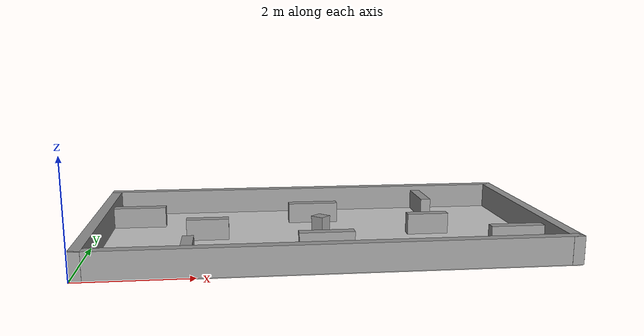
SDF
<sdf version="1.6">
 <world name="default">
  <light name="sun" type="directional">
   <pose>0 0 10 0 -0 0</pose>
   <diffuse>0.8 0.8 0.8 1</diffuse>
   <specular>0.1 0.1 0.1 1</specular>
   <attenuation>
    <range>1000</range>
    <constant>0.9</constant>
    <linear>0.01</linear>
    <quadratic>0.001</quadratic>
   </attenuation>
   <direction>-0.5 0.5 -1</direction>
  </light>
  <gravity>0 0 -9.8</gravity>
  <magnetic_field>6e-06 2.3e-05 -4.2e-05</magnetic_field>
  <atmosphere type="adiabatic"/>
  <physics name="default_physics" default="0" type="ode">
   <max_step_size>0.01</max_step_size>
   <real_time_factor>1</real_time_factor>
   <real_time_update_rate>0</real_time_update_rate>
  </physics>
  <scene><ambient>0.4 0.4 0.4 1</ambient><background>0.7 0.7 0.7 1</background><shadows>1</shadows></scene>
  <spherical_coordinates>
   <surface_model>EARTH_WGS84</surface_model>
   <latitude_deg>0</latitude_deg>
   <longitude_deg>0</longitude_deg>
   <elevation>0</elevation>
   <heading_deg>0</heading_deg>
  </spherical_coordinates>
  <model name="wall">
   <pose frame="world">4.245 2.445 0 0 -0 0</pose>
   <link name="Wall_100">
    <collision name="Wall_100_Collision">
     <geometry><box><size>0.259899 0.25 0.4</size></box></geometry>
     <pose>0 0 0.2 0 -0 0</pose>
    </collision>
    <visual name="Wall_100_Visual">
     <pose>0 0 0.2 0 -0 0</pose>
     <geometry><box><size>0.259899 0.25 0.4</size></box></geometry>
     <material>
      <script><uri>file://media/materials/scripts/gazebo.material</uri><name>Gazebo/Grey</name></script>
      <ambient>1 1 1 1</ambient>
     </material>
    </visual>
    <pose>0.030183 -0.017942 0 0 0 -0.785398</pose>
   </link>
   <link name="Wall_45">
    <collision name="Wall_45_Collision">
     <geometry><box><size>8.485 0.2 0.5</size></box></geometry>
     <pose>0 0 0.25 0 -0 0</pose>
    </collision>
    <visual name="Wall_45_Visual">
     <pose>0 0 0.25 0 -0 0</pose>
     <geometry><box><size>8.485 0.2 0.5</size></box></geometry>
     <material>
      <script><uri>file://media/materials/scripts/gazebo.material</uri><name>Gazebo/Grey</name></script>
      <ambient>1 1 1 1</ambient>
     </material>
    </visual>
    <pose>0 2.34 0 0 -0 1.5e-05</pose>
   </link>
   <link name="Wall_54">
    <collision name="Wall_54_Collision">
     <geometry><box><size>4.885 0.2 0.5</size></box></geometry>
     <pose>0 0 0.25 0 -0 0</pose>
    </collision>
    <visual name="Wall_54_Visual">
     <pose>0 0 0.25 0 -0 0</pose>
     <geometry><box><size>4.885 0.2 0.5</size></box></geometry>
     <material>
      <script><uri>file://media/materials/scripts/gazebo.material</uri><name>Gazebo/Grey</name></script>
      <ambient>1 1 1 1</ambient>
     </material>
    </visual>
    <pose>4.14 0 0 0 0 -1.5708</pose>
   </link>
   <link name="Wall_56">
    <collision name="Wall_56_Collision">
     <geometry><box><size>8.485 0.2 0.5</size></box></geometry>
     <pose>0 0 0.25 0 -0 0</pose>
    </collision>
    <visual name="Wall_56_Visual">
     <pose>0 0 0.25 0 -0 0</pose>
     <geometry><box><size>8.485 0.2 0.5</size></box></geometry>
     <material>
      <script><uri>file://media/materials/scripts/gazebo.material</uri><name>Gazebo/Grey</name></script>
      <ambient>1 1 1 1</ambient>
     </material>
    </visual>
    <pose>0 -2.34 0 0 0 -3.14158</pose>
   </link>
   <link name="Wall_58">
    <collision name="Wall_58_Collision">
     <geometry><box><size>4.885 0.2 0.5</size></box></geometry>
     <pose>0 0 0.25 0 -0 0</pose>
    </collision>
    <visual name="Wall_58_Visual">
     <pose>0 0 0.25 0 -0 0</pose>
     <geometry><box><size>4.885 0.2 0.5</size></box></geometry>
     <material>
      <script><uri>file://media/materials/scripts/gazebo.material</uri><name>Gazebo/Grey</name></script>
      <ambient>1 1 1 1</ambient>
     </material>
    </visual>
    <pose>-4.14 -0 0 0 0 -1.5708</pose>
   </link>
   <link name="Wall_74">
    <collision name="Wall_74_Collision">
     <geometry><box><size>1.05 0.2 0.4</size></box></geometry>
     <pose>0 0 0.2 0 -0 0</pose>
    </collision>
    <visual name="Wall_74_Visual">
     <pose>0 0 0.2 0 -0 0</pose>
     <geometry><box><size>1.05 0.2 0.4</size></box></geometry>
     <material>
      <script><uri>file://media/materials/scripts/gazebo.material</uri><name>Gazebo/Grey</name></script>
      <ambient>1 1 1 1</ambient>
     </material>
    </visual>
    <pose>-3.54 1.14 0 0 -0 0</pose>
   </link>
   <link name="Wall_76">
    <collision name="Wall_76_Collision">
     <geometry><box><size>1 0.2 0.4</size></box></geometry>
     <pose>0 0 0.2 0 -0 0</pose>
    </collision>
    <visual name="Wall_76_Visual">
     <pose>0 0 0.2 0 -0 0</pose>
     <geometry><box><size>1 0.2 0.4</size></box></geometry>
     <material>
      <script><uri>file://media/materials/scripts/gazebo.material</uri><name>Gazebo/Grey</name></script>
      <ambient>1 1 1 1</ambient>
     </material>
    </visual>
    <pose>-2.44 -1.74 0 0 -0 1.5708</pose>
   </link>
   <link name="Wall_78">
    <collision name="Wall_78_Collision">
     <geometry><box><size>1 0.2 0.4</size></box></geometry>
     <pose>0 0 0.2 0 -0 0</pose>
    </collision>
    <visual name="Wall_78_Visual">
     <pose>0 0 0.2 0 -0 0</pose>
     <geometry><box><size>1 0.2 0.4</size></box></geometry>
     <material>
      <script><uri>file://media/materials/scripts/gazebo.material</uri><name>Gazebo/Grey</name></script>
      <ambient>1 1 1 1</ambient>
     </material>
    </visual>
    <pose>3.54 -1.14 0 0 -0 3.14159</pose>
   </link>
   <link name="Wall_80">
    <collision name="Wall_80_Collision">
     <geometry><box><size>1 0.2 0.4</size></box></geometry>
     <pose>0 0 0.2 0 -0 0</pose>
    </collision>
    <visual name="Wall_80_Visual">
     <pose>0 0 0.2 0 -0 0</pose>
     <geometry><box><size>1 0.2 0.4</size></box></geometry>
     <material>
      <script><uri>file://media/materials/scripts/gazebo.material</uri><name>Gazebo/Grey</name></script>
      <ambient>1 1 1 1</ambient>
     </material>
    </visual>
    <pose>2.44 1.74 0 0 -0 1.5708</pose>
   </link>
   <link name="Wall_82">
    <collision name="Wall_82_Collision">
     <geometry><box><size>1 0.2 0.4</size></box></geometry>
     <pose>0 0 0.2 0 -0 0</pose>
    </collision>
    <visual name="Wall_82_Visual">
     <pose>0 0 0.2 0 -0 0</pose>
     <geometry><box><size>1 0.2 0.4</size></box></geometry>
     <material>
      <script><uri>file://media/materials/scripts/gazebo.material</uri><name>Gazebo/Grey</name></script>
      <ambient>1 1 1 1</ambient>
     </material>
    </visual>
    <pose>0 1.205 0 0 -0 0</pose>
   </link>
   <link name="Wall_84">
    <collision name="Wall_84_Collision">
     <geometry><box><size>1 0.2 0.4</size></box></geometry>
     <pose>0 0 0.2 0 -0 0</pose>
    </collision>
    <visual name="Wall_84_Visual">
     <pose>0 0 0.2 0 -0 0</pose>
     <geometry><box><size>1 0.2 0.4</size></box></geometry>
     <material>
      <script><uri>file://media/materials/scripts/gazebo.material</uri><name>Gazebo/Grey</name></script>
      <ambient>1 1 1 1</ambient>
     </material>
    </visual>
    <pose>0 -1.205 0 0 -0 0</pose>
   </link>
   <link name="Wall_86">
    <collision name="Wall_86_Collision">
     <geometry><box><size>0.8 0.2 0.4</size></box></geometry>
     <pose>0 0 0.2 0 -0 0</pose>
    </collision>
    <visual name="Wall_86_Visual">
     <pose>0 0 0.2 0 -0 0</pose>
     <geometry><box><size>0.8 0.2 0.4</size></box></geometry>
     <material>
      <script><uri>file://media/materials/scripts/gazebo.material</uri><name>Gazebo/Grey</name></script>
      <ambient>1 1 1 1</ambient>
     </material>
    </visual>
    <pose>-2.14 -0 0 0 -0 0</pose>
   </link>
   <link name="Wall_88">
    <collision name="Wall_88_Collision">
     <geometry><box><size>0.8 0.2 0.4</size></box></geometry>
     <pose>0 0 0.2 0 -0 0</pose>
    </collision>
    <visual name="Wall_88_Visual">
     <pose>0 0 0.2 0 -0 0</pose>
     <geometry><box><size>0.8 0.2 0.4</size></box></geometry>
     <material>
      <script><uri>file://media/materials/scripts/gazebo.material</uri><name>Gazebo/Grey</name></script>
      <ambient>1 1 1 1</ambient>
     </material>
    </visual>
    <pose>2.14 -0 0 0 -0 0</pose>
   </link>
   <static>1</static>
  </model>
  <model name="icra_ground_plane">
   <static>1</static>
   <link name="link">
    <collision name="collision">
     <geometry><plane><normal>0 0 1</normal><size>8.48 4.88</size></plane></geometry>
     <surface><friction><ode><mu>100</mu><mu2>50</mu2></ode></friction></surface>
    </collision>
    <visual name="visual">
     <cast_shadows>0</cast_shadows>
     <geometry><plane><normal>0 0 1</normal><size>8.48 4.88</size></plane></geometry>
     <material>
      <script>
       <uri>model://icra_ground_plane/materials/scripts/</uri>
       <uri>model://icra_ground_plane/materials/textures/</uri>
       <name>icra_ground_plane/Image</name>
      </script>
     </material>
    </visual>
   </link>
   <pose>4.24 2.44 0 0 -0 0</pose>
  </model>
  <audio><device>default</device></audio>
 </world>
</sdf>
